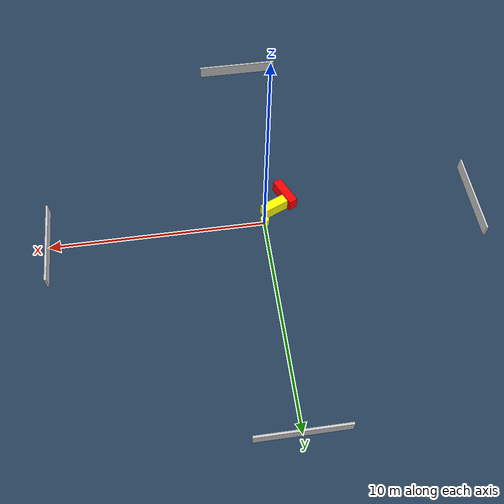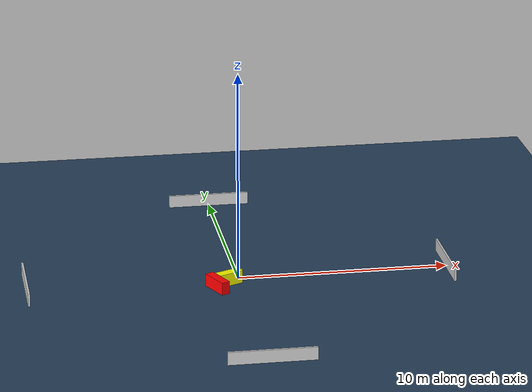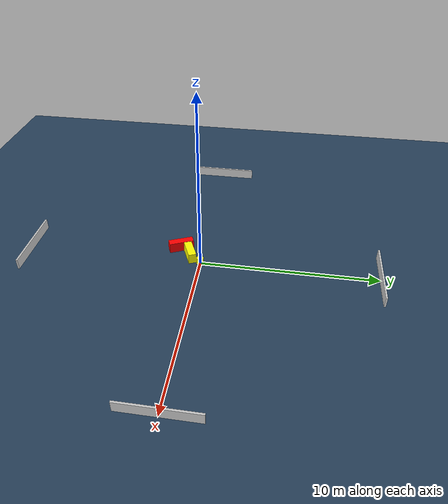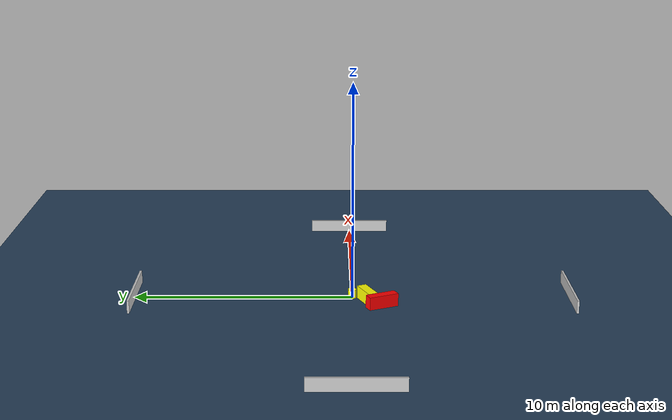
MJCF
<?xml version="1.0" ?>
<mujoco model="generated_environment">
  <option timestep="0.01" integrator="RK4" cone="elliptic"/>
  <default>
    <geom density="1"/>
  </default>
  <asset>
    <texture builtin="gradient" height="3072" name="skybox" rgb1="0.3 0.5 0.7" rgb2="0 0 0" type="skybox" width="512"/>
    <texture builtin="checker" height="300" name="groundplane" rgb1="0.2 0.3 0.4" rgb2="0.1 0.2 0.3" type="2d" width="300"/>
    <material name="groundplane" reflectance="0.2" texrepeat="5 5" texture="groundplane"/>
  </asset>
  <worldbody>
    <light dir="0 0 -1" directional="true" pos="0 0 1.5"/>
    <geom condim="3" friction="0.5 0.005 0.001" material="groundplane" name="floor" pos="0 0 0" size="0 0 0.05" type="plane"/>
    <body name="walls">
      <geom name="wall_1" condim="4" pos="-10.0 0.0 0.3" rgba="0.800000011920929 0.800000011920929 0.800000011920929 1.0" size="0.05 2.0 0.3" type="box"/>
      <geom name="wall_2" condim="4" pos="10.0 0.0 0.3" rgba="0.800000011920929 0.800000011920929 0.800000011920929 1.0" size="0.05 2.0 0.3" type="box"/>
      <geom name="wall_3" condim="4" pos="0.0 -10.0 0.3" rgba="0.800000011920929 0.800000011920929 0.800000011920929 1.0" size="2.0 0.05 0.3" type="box"/>
      <geom name="wall_4" condim="4" pos="0.0 10.0 0.3" rgba="0.800000011920929 0.800000011920929 0.800000011920929 1.0" size="2.0 0.05 0.3" type="box"/>
    </body>
    <body name="robot">
      <joint name="joint_x" type="slide" pos="0 0 0" axis="1 0 0"/>
      <joint name="joint_y" type="slide" pos="0 0 0" axis="0 1 0"/>
      <geom name="robot" type="cylinder" pos="0.0 0.0 0.2" size="0.2 0.2 0.0" mass="5.0" friction="1.0 0.005 0.0001" condim="4" rgba="1.0 1.0 0.0 1.0"/>
    </body>
    <body name="obstacle_1_movable">
      <geom name="obstacle_1_movable" condim="4" pos="-0.5406346595436555 -0.6761812631259169 0.3" euler="0 0 293.85935297166475" friction="0.0 0.005 0.001" rgba="1.0 1.0 0.0 1.0" size="0.22336711464970688 0.6164582208096451 0.3" type="box" mass="0.1"/>
      <joint type="free"/>
    </body>
    <body name="obstacle_2_static">
      <geom name="obstacle_2_static" condim="4" pos="-1.172607811241046 -1.3260213422032339 0.3" euler="0 0 204.33472814015948" friction="0.0 0.005 0.001" rgba="1.0 0.0 0.0 1.0" size="0.21161095204599822 0.7120110115681364 0.3" type="box"/>
    </body>
  </worldbody>
  <actuator>
    <motor name="actuator_x" joint="joint_x" gear="1" ctrlrange="-1 1"/>
    <motor name="actuator_y" joint="joint_y" gear="1" ctrlrange="-1 1"/>
  </actuator>
</mujoco>
